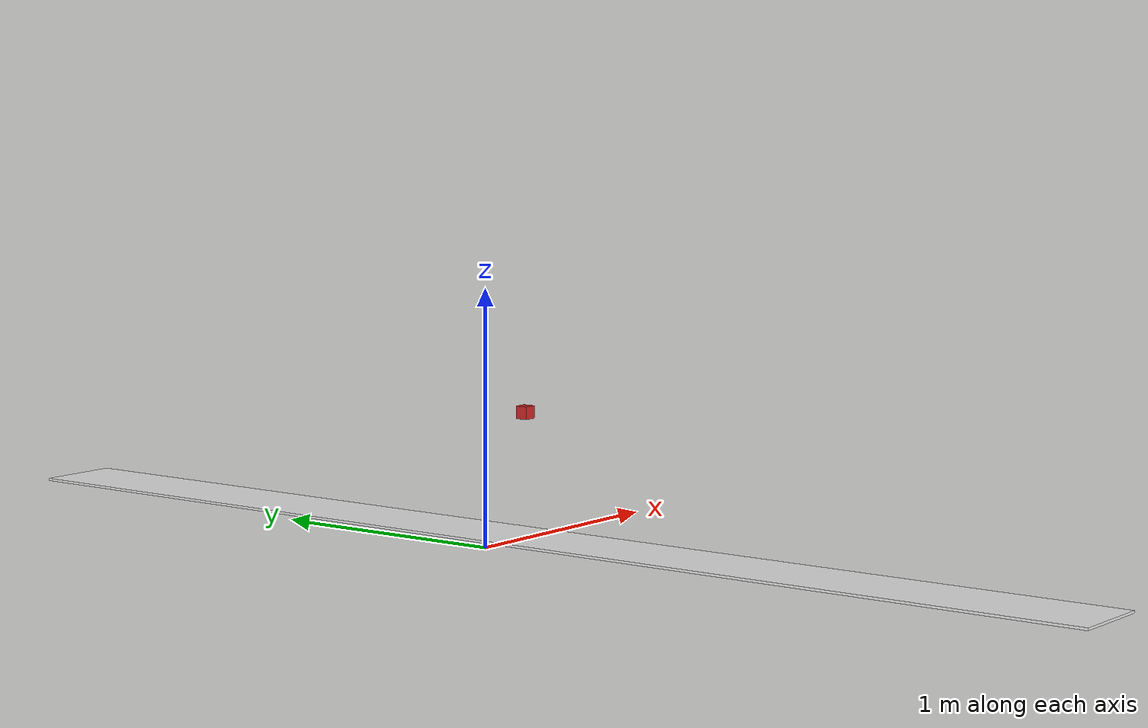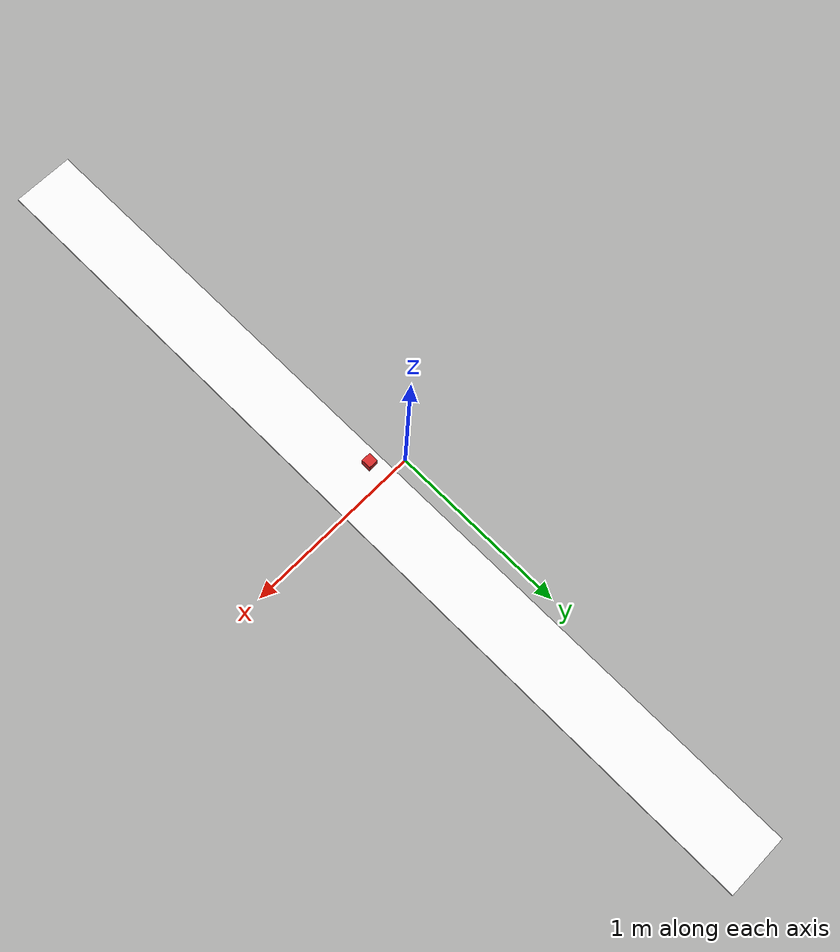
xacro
<?xml version="1.0"?>

<robot name="assemblyline" xmlns:xacro="http://www.ros.org/wiki/xacro">

  <!-- some parameters -->
  <xacro:property name="pi" value="3.141592654" />
  <xacro:property name="line_loc" value="0.250" />
	<xacro:property name="length_base" value="5"/>
	<xacro:property name="width_base" value="0.350"/>
	<xacro:property name="higth_base" value="0.01"/>
	<xacro:property name="mass_base" value="100"/>
  <xacro:property name="camera1_loc" value="0.50" />
	<xacro:property name="camera_link" value="0.05" />

  <!-- Import all Gazebo-customization elements, including Gazebo colors -->
  <xacro:include filename="$(find assemblyline_description)/urdf/assemblyline.gazebo.xacro" />
  <!-- Import Rviz colors -->
  <xacro:include filename="$(find assemblyline_description)/urdf/materials.xacro" />
  <!-- World -->
  <link name="world">
  </link>

<!-- assembly_line location -->
  <joint name="world_line" type="prismatic">
     <origin xyz="${line_loc} 0 0" rpy="0 0 0"/>
     <parent link="world"/>
     <child link="transline"/>
     <axis xyz="0 1 0"/>
     <limit velocity="0.25" effort="1000" lower="-50" upper="50" />
  </joint>

	  <!-- Transmission 7 -->
  <transmission name="tran01">
    <type>transmission_interface/SimpleTransmission</type>
    <joint name="world_line">
      <hardwareInterface>hardware_interface/VelocityJointInterface</hardwareInterface>
    </joint>
    <actuator name="motor01">
      <hardwareInterface>VelocityJointInterface</hardwareInterface>
      <mechanicalReduction>1</mechanicalReduction>
    </actuator>
  </transmission>

  <link name="transline">
    <visual>
      <origin xyz="0 0 ${higth_base/2}" rpy="0 0 0"/>
      <geometry>
				<box size="${width_base} ${length_base} ${higth_base}"/>
      </geometry>
      <material name="white"/>
    </visual>

		<collision>
      <origin xyz="0 0 ${higth_base/2}" rpy="0 0 0"/>
      <geometry>
				<box size="${width_base} ${length_base} ${higth_base}"/>
      </geometry>
    </collision>

    <inertial>
      <origin xyz="0 0 ${higth_base/2}" rpy="0 0 0"/>
			<mass value="${mass_base}"/>
			<inertia ixy="0.0" ixz="0.0" iyz="0.0"
				 ixx="${1/12*mass_base*(length_base*length_base+higth_base*higth_base)}"
         iyy="${1/12*mass_base*(width_base*width_base+higth_base*higth_base)}"
         izz="${1/12*mass_base*(length_base*length_base+length_base*length_base)}"/>
		</inertial>
  </link>

	<!-- camera1 location -->
  <joint name="world_camera1" type="prismatic">
     <origin xyz="${line_loc} 0 ${camera1_loc}" rpy="0 ${pi/2} 0"/>
     <parent link="world"/>
     <child link="camera1"/>
     <axis xyz="0 0 1"/>
     <limit velocity="0.01" effort="1000" lower="${-camera1_loc}" upper="${camera1_loc}" />
  </joint>

	  <!-- Transmission 7 -->
  <transmission name="tran02">
    <type>transmission_interface/SimpleTransmission</type>
    <joint name="world_camera1">
      <hardwareInterface>hardware_interface/VelocityJointInterface</hardwareInterface>
    </joint>
    <actuator name="motor02">
      <hardwareInterface>VelocityJointInterface</hardwareInterface>
      <mechanicalReduction>1</mechanicalReduction>
    </actuator>
  </transmission>

	<link name="camera1">
    <collision>
      <origin xyz="0 0 0" rpy="0 0 0"/>
      <geometry>
	<box size="${camera_link} ${camera_link} ${camera_link}"/>
      </geometry>
    </collision>

    <visual>
      <origin xyz="0 0 0" rpy="0 0 0"/>
      <geometry>
	<box size="${camera_link} ${camera_link} ${camera_link}"/>
      </geometry>
      <material name="red"/>
    </visual>

    <inertial>
      <mass value="1e-5" />
      <origin xyz="0 0 0" rpy="0 0 0"/>
      <inertia ixx="1e-6" ixy="0" ixz="0" iyy="1e-6" iyz="0" izz="1e-6" />
    </inertial>
  </link>

</robot>
